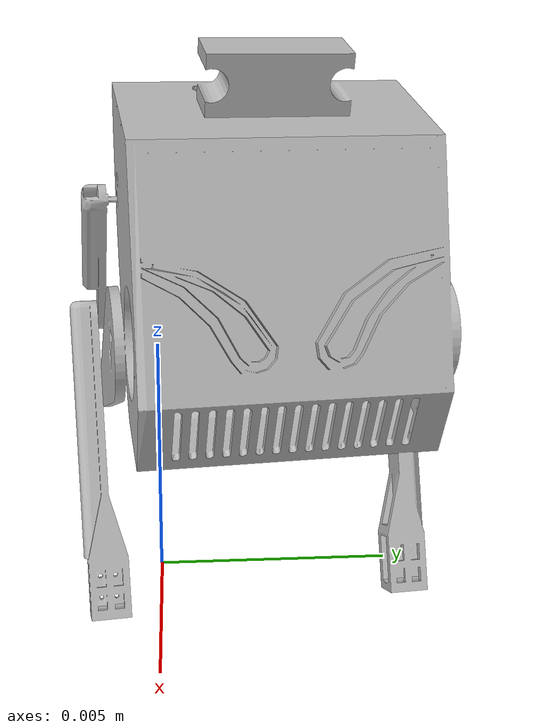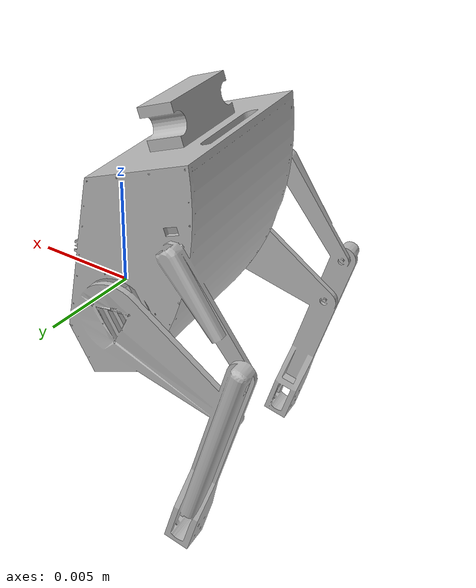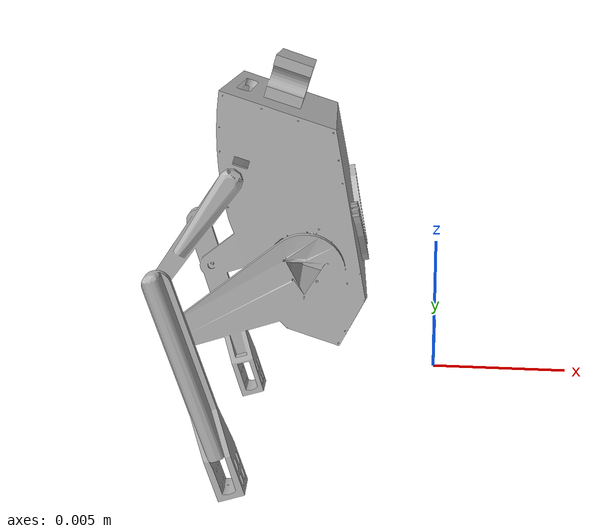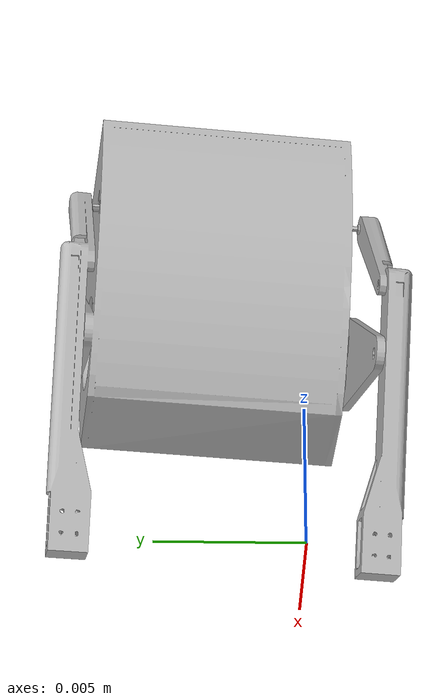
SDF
<?xml version="1.0" ?>
<sdf version="1.6">
  <model name="my_model">
    <static>false</static> <!-- true if it's a non-moving object -->
    <link name="link">
      <visual name="visual">
        <geometry>
          <mesh>
            <uri>model://my_model/meshes/my_model.stl</uri> <!-- path to your .stl file -->
          </mesh>
        </geometry>
      </visual>
      <collision name="collision">
        <geometry>
          <mesh>
            <uri>model://my_model/meshes/my_model.stl</uri>
          </mesh>
        </geometry>
      </collision>
    </link>
  </model>
</sdf>
